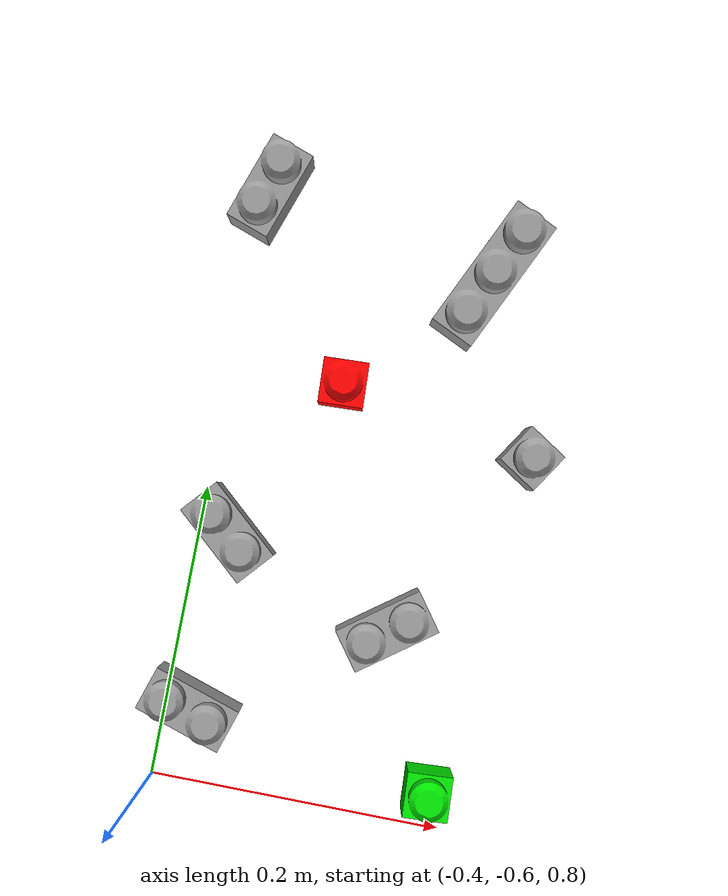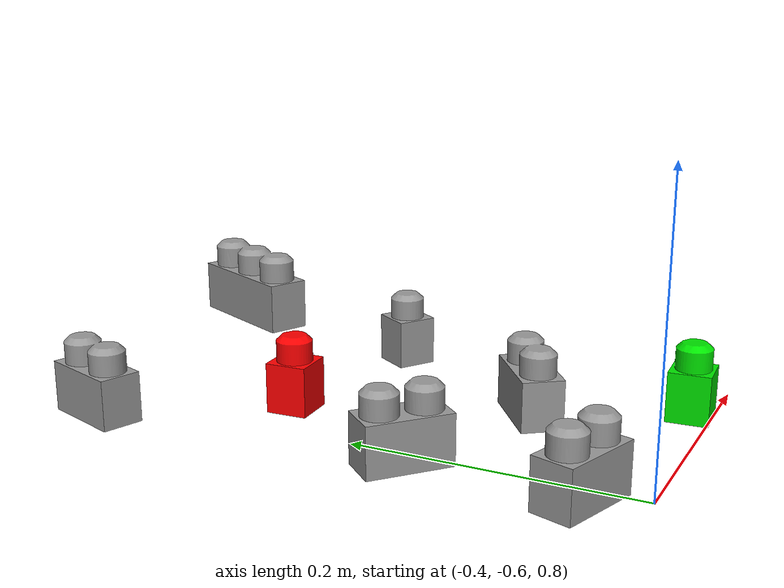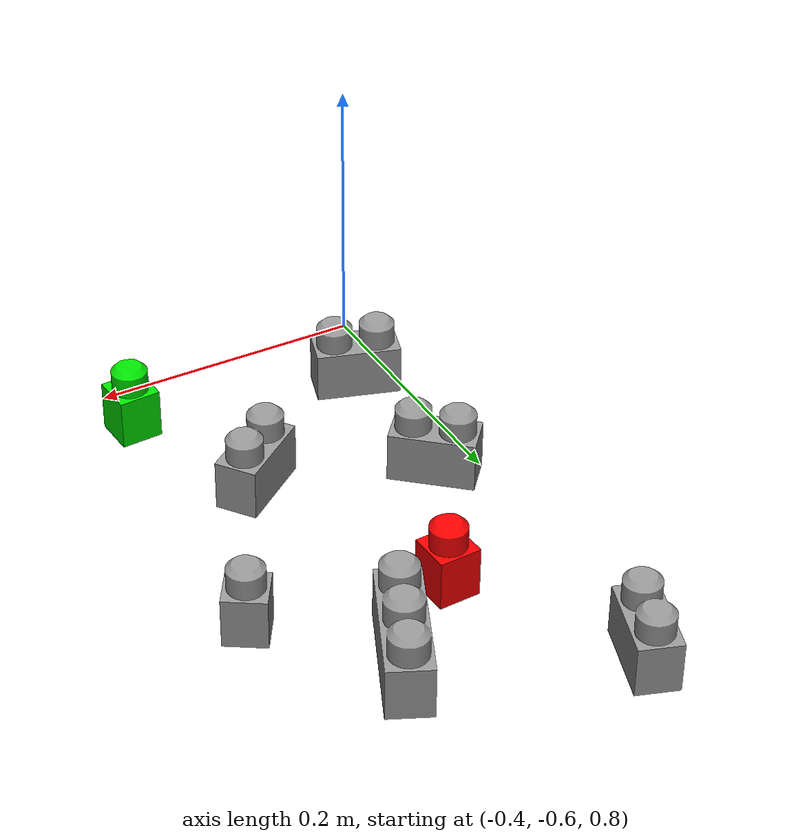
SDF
<sdf version="1.7">
 <world name="base">
  <plugin name="ros_link_attacher_plugin" filename="libgazebo_ros_link_attacher.so"/>
  <gravity>0 0 -9.81</gravity>
  <physics name="default_physics" default="0" type="ode">
   <max_step_size>0.001</max_step_size>
   <real_time_factor>1</real_time_factor>
   <real_time_update_rate>1000</real_time_update_rate>
  </physics>
  <scene><ambient>0.4 0.4 0.4 1</ambient><background>0.7 0.7 0.7 1</background><shadows>1</shadows></scene>
  <light name="sun" type="directional">
   <cast_shadows>0</cast_shadows>
   <pose>0 0 10 0 -0 0</pose>
   <diffuse>0.8 0.8 0.8 1</diffuse>
   <specular>0.2 0.2 0.2 1</specular>
   <attenuation>
    <range>1000</range>
    <constant>0.9</constant>
    <linear>0.01</linear>
    <quadratic>0.001</quadratic>
   </attenuation>
   <direction>-0.5 0.1 -0.9</direction>
   <spot><inner_angle>0</inner_angle><outer_angle>0</outer_angle><falloff>0</falloff></spot>
  </light>
  <model name="ground_plane">
   <static>1</static>
   <link name="link">
    <collision name="collision">
     <geometry><plane><normal>0 0 1</normal><size>100 100</size></plane></geometry>
     <surface>
      <contact><collide_bitmask>65535</collide_bitmask></contact>
      <friction><ode><mu>100</mu><mu2>50</mu2></ode></friction>
     </surface>
    </collision>
    <visual name="visual">
     <cast_shadows>0</cast_shadows>
     <geometry><plane><normal>0 0 1</normal><size>100 100</size></plane></geometry>
     <material>
      <script><uri>file://media/materials/scripts/gazebo.material</uri><name>Gazebo/Grey</name></script>
     </material>
    </visual>
   </link>
  </model>
  <model name="lego_X1-Y2-Z2">
   <link name="link">
    <inertial>
     <pose>1e-06 7e-06 0.000398 0 -0 0</pose>
     <mass>0.146868</mass>
     <inertia>
      <ixx>0.000100644</ixx>
      <ixy>-2.20574e-09</ixy>
      <ixz>6.78532e-10</ixz>
      <iyy>5.89081e-05</iyy>
      <iyz>-2.30188e-08</iyz>
      <izz>7.98702e-05</izz>
     </inertia>
    </inertial>
    <collision name="collision">
     <geometry><mesh><scale>1 1 1</scale><uri>model://lego_X1-Y2-Z2/meshes/X1-Y2-Z2.stl</uri></mesh></geometry>
     <surface>
      <contact><ode><max_vel>0.01</max_vel><min_depth>0</min_depth><mu>0.1</mu><mu2>0.1</mu2></ode></contact>
      <bounce><restitution_coefficient>0</restitution_coefficient><threshold>1e+06</threshold></bounce>
     </surface>
    </collision>
    <visual name="visual">
     <geometry><mesh><scale>1 1 1</scale><uri>model://lego_X1-Y2-Z2/meshes/X1-Y2-Z2.stl</uri></mesh></geometry>
     <material>
      <script><uri>file://media/materials/scripts/gazebo.material</uri><name>Gazebo/Grey</name></script>
      <shader type="vertex"><normal_map>__default__</normal_map></shader>
      <ambient>0.3 0.3 0.3 1</ambient>
      <diffuse>0.7 0.7 0.7 1</diffuse>
      <specular>0.01 0.01 0.01 1</specular>
      <emissive>0 0 0 1</emissive>
     </material>
    </visual>
   </link>
   <pose>-0.396859 -0.190731 0.810899 -2.3e-05 0.000215 -0.332383</pose>
  </model>
  <model name="lego_X1-Y2-Z2_0">
   <link name="link">
    <inertial>
     <pose>1e-06 7e-06 0.000398 0 -0 0</pose>
     <mass>0.146868</mass>
     <inertia>
      <ixx>0.000100644</ixx>
      <ixy>-2.20574e-09</ixy>
      <ixz>6.78532e-10</ixz>
      <iyy>5.89081e-05</iyy>
      <iyz>-2.30188e-08</iyz>
      <izz>7.98702e-05</izz>
     </inertia>
    </inertial>
    <collision name="collision">
     <geometry><mesh><scale>1 1 1</scale><uri>model://lego_X1-Y2-Z2/meshes/X1-Y2-Z2.stl</uri></mesh></geometry>
     <surface>
      <contact><ode><max_vel>0.01</max_vel><min_depth>0</min_depth><mu>0.1</mu><mu2>0.1</mu2></ode></contact>
      <bounce><restitution_coefficient>0</restitution_coefficient><threshold>1e+06</threshold></bounce>
     </surface>
    </collision>
    <visual name="visual">
     <geometry><mesh><scale>1 1 1</scale><uri>model://lego_X1-Y2-Z2/meshes/X1-Y2-Z2.stl</uri></mesh></geometry>
     <material>
      <script><uri>file://media/materials/scripts/gazebo.material</uri><name>Gazebo/Grey</name></script>
      <shader type="vertex"><normal_map>__default__</normal_map></shader>
      <ambient>0.3 0.3 0.3 1</ambient>
      <diffuse>0.7 0.7 0.7 1</diffuse>
      <specular>0.01 0.01 0.01 1</specular>
      <emissive>0 0 0 1</emissive>
     </material>
    </visual>
   </link>
   <pose>-0.379729 -0.42711 0.810908 0 -0 0.851339</pose>
  </model>
  <model name="lego_X1-Y2-Z2_1">
   <link name="link">
    <inertial>
     <pose>1e-06 7e-06 0.000398 0 -0 0</pose>
     <mass>0.146868</mass>
     <inertia>
      <ixx>0.000100644</ixx>
      <ixy>-2.20574e-09</ixy>
      <ixz>6.78532e-10</ixz>
      <iyy>5.89081e-05</iyy>
      <iyz>-2.30188e-08</iyz>
      <izz>7.98702e-05</izz>
     </inertia>
    </inertial>
    <collision name="collision">
     <geometry><mesh><scale>1 1 1</scale><uri>model://lego_X1-Y2-Z2/meshes/X1-Y2-Z2.stl</uri></mesh></geometry>
     <surface>
      <contact><ode><max_vel>0.01</max_vel><min_depth>0</min_depth><mu>0.1</mu><mu2>0.1</mu2></ode></contact>
      <bounce><restitution_coefficient>0</restitution_coefficient><threshold>1e+06</threshold></bounce>
     </surface>
    </collision>
    <visual name="visual">
     <geometry><mesh><scale>1 1 1</scale><uri>model://lego_X1-Y2-Z2/meshes/X1-Y2-Z2.stl</uri></mesh></geometry>
     <material>
      <script><uri>file://media/materials/scripts/gazebo.material</uri><name>Gazebo/Grey</name></script>
      <shader type="vertex"><normal_map>__default__</normal_map></shader>
      <ambient>0.3 0.3 0.3 1</ambient>
      <diffuse>0.7 0.7 0.7 1</diffuse>
      <specular>0.01 0.01 0.01 1</specular>
      <emissive>0 0 0 1</emissive>
     </material>
    </visual>
   </link>
   <pose>-0.382858 -0.550142 0.810921 -0.000138 -0.000586 1.26204</pose>
  </model>
  <model name="lego_X1-Y2-Z2_2">
   <link name="link">
    <inertial>
     <pose>1e-06 7e-06 0.000398 0 -0 0</pose>
     <mass>0.146868</mass>
     <inertia>
      <ixx>0.000100644</ixx>
      <ixy>-2.20574e-09</ixy>
      <ixz>6.78532e-10</ixz>
      <iyy>5.89081e-05</iyy>
      <iyz>-2.30188e-08</iyz>
      <izz>7.98702e-05</izz>
     </inertia>
    </inertial>
    <collision name="collision">
     <geometry><mesh><scale>1 1 1</scale><uri>model://lego_X1-Y2-Z2/meshes/X1-Y2-Z2.stl</uri></mesh></geometry>
     <surface>
      <contact><ode><max_vel>0.01</max_vel><min_depth>0</min_depth><mu>0.1</mu><mu2>0.1</mu2></ode></contact>
      <bounce><restitution_coefficient>0</restitution_coefficient><threshold>1e+06</threshold></bounce>
     </surface>
    </collision>
    <visual name="visual">
     <geometry><mesh><scale>1 1 1</scale><uri>model://lego_X1-Y2-Z2/meshes/X1-Y2-Z2.stl</uri></mesh></geometry>
     <material>
      <script><uri>file://media/materials/scripts/gazebo.material</uri><name>Gazebo/Grey</name></script>
      <shader type="vertex"><normal_map>__default__</normal_map></shader>
      <ambient>0.3 0.3 0.3 1</ambient>
      <diffuse>0.7 0.7 0.7 1</diffuse>
      <specular>0.01 0.01 0.01 1</specular>
      <emissive>0 0 0 1</emissive>
     </material>
    </visual>
   </link>
   <pose>-0.26026 -0.471879 0.810906 -1.5e-05 -0.000207 -0.933508</pose>
  </model>
  <model name="lego_X1-Y3-Z2">
   <link name="link">
    <inertial>
     <pose>1e-06 1e-06 0.000653 0 -0 0</pose>
     <mass>0.212844</mass>
     <inertia>
      <ixx>0.000243994</ixx>
      <ixy>-2.47623e-10</ixy>
      <ixz>-4.81047e-09</ixz>
      <iyy>8.5861e-05</iyy>
      <iyz>-7.44265e-09</iyz>
      <izz>0.000214469</izz>
     </inertia>
    </inertial>
    <collision name="collision">
     <geometry><mesh><scale>1 1 1</scale><uri>model://lego_X1-Y3-Z2/meshes/X1-Y3-Z2.stl</uri></mesh></geometry>
     <surface>
      <contact><ode><max_vel>0.01</max_vel><min_depth>0</min_depth><mu>0.1</mu><mu2>0.1</mu2></ode></contact>
      <bounce><restitution_coefficient>0</restitution_coefficient><threshold>1e+06</threshold></bounce>
     </surface>
    </collision>
    <visual name="visual">
     <geometry><mesh><scale>1 1 1</scale><uri>model://lego_X1-Y3-Z2/meshes/X1-Y3-Z2.stl</uri></mesh></geometry>
     <material>
      <script><uri>file://media/materials/scripts/gazebo.material</uri><name>Gazebo/Grey</name></script>
      <shader type="vertex"><normal_map>__default__</normal_map></shader>
      <ambient>0.3 0.3 0.3 1</ambient>
      <diffuse>0.7 0.7 0.7 1</diffuse>
      <specular>0.01 0.01 0.01 1</specular>
      <emissive>0 0 0 1</emissive>
     </material>
    </visual>
   </link>
   <pose>-0.238806 -0.225905 0.847802 0.000108 -0.00021 -0.432463</pose>
  </model>
  <model name="lego_X1-Y1-Z2">
   <link name="link">
    <inertial>
     <pose>2e-06 -0 -0.000475 0 -0 0</pose>
     <mass>0.0802771</mass>
     <inertia>
      <ixx>3.14179e-05</ixx>
      <ixy>-2.69251e-09</ixy>
      <ixz>-4.52438e-09</ixz>
      <iyy>3.14364e-05</iyy>
      <iyz>3.14783e-09</iyz>
      <izz>1.98462e-05</izz>
     </inertia>
    </inertial>
    <collision name="collision">
     <geometry><mesh><scale>1 1 1</scale><uri>model://lego_X1-Y1-Z2/meshes/X1-Y1-Z2.stl</uri></mesh></geometry>
     <surface>
      <contact><ode><max_vel>0.01</max_vel><min_depth>0</min_depth><mu>0.1</mu><mu2>0.1</mu2></ode></contact>
      <bounce><restitution_coefficient>0</restitution_coefficient><threshold>1e+06</threshold></bounce>
     </surface>
    </collision>
    <visual name="visual">
     <geometry><mesh><scale>1 1 1</scale><uri>model://lego_X1-Y1-Z2/meshes/X1-Y1-Z2.stl</uri></mesh></geometry>
     <material>
      <script><uri>file://media/materials/scripts/gazebo.material</uri><name>Gazebo/Grey</name></script>
      <shader type="vertex"><normal_map>__default__</normal_map></shader>
      <ambient>0 0.9 0 1</ambient>
      <diffuse>0.7 0.7 0.7 1</diffuse>
      <specular>0.01 0.01 0.01 1</specular>
      <emissive>0 0 0 1</emissive>
     </material>
    </visual>
   </link>
   <pose>-0.211675 -0.576668 0.810907 4e-05 0 0.056845</pose>
  </model>
  <model name="lego_X1-Y1-Z2_0">
   <link name="link">
    <inertial>
     <pose>2e-06 -0 -0.000475 0 -0 0</pose>
     <mass>0.0802771</mass>
     <inertia>
      <ixx>3.14179e-05</ixx>
      <ixy>-2.69251e-09</ixy>
      <ixz>-4.52438e-09</ixz>
      <iyy>3.14364e-05</iyy>
      <iyz>3.14783e-09</iyz>
      <izz>1.98462e-05</izz>
     </inertia>
    </inertial>
    <collision name="collision">
     <geometry><mesh><scale>1 1 1</scale><uri>model://lego_X1-Y1-Z2/meshes/X1-Y1-Z2.stl</uri></mesh></geometry>
     <surface>
      <contact><ode><max_vel>0.01</max_vel><min_depth>0</min_depth><mu>0.1</mu><mu2>0.1</mu2></ode></contact>
      <bounce><restitution_coefficient>0</restitution_coefficient><threshold>1e+06</threshold></bounce>
     </surface>
    </collision>
    <visual name="visual">
     <geometry><mesh><scale>1 1 1</scale><uri>model://lego_X1-Y1-Z2/meshes/X1-Y1-Z2.stl</uri></mesh></geometry>
     <material>
      <script><uri>file://media/materials/scripts/gazebo.material</uri><name>Gazebo/Grey</name></script>
      <shader type="vertex"><normal_map>__default__</normal_map></shader>
      <ambient>1 1 1 1</ambient>
      <diffuse>0.7 0.7 0.7 1</diffuse>
      <specular>0.01 0.01 0.01 1</specular>
      <emissive>0 0 0 1</emissive>
     </material>
    </visual>
   </link>
   <pose>-0.186503 -0.337505 0.810909 6.1e-05 1.3e-05 1.00461</pose>
  </model>
  <model name="lego_X1-Y1-Z2_1">
   <link name="link">
    <inertial>
     <pose>2e-06 -0 -0.000475 0 -0 0</pose>
     <mass>0.0802771</mass>
     <inertia>
      <ixx>3.14179e-05</ixx>
      <ixy>-2.69251e-09</ixy>
      <ixz>-4.52438e-09</ixz>
      <iyy>3.14364e-05</iyy>
      <iyz>3.14783e-09</iyz>
      <izz>1.98462e-05</izz>
     </inertia>
    </inertial>
    <collision name="collision">
     <geometry><mesh><scale>1 1 1</scale><uri>model://lego_X1-Y1-Z2/meshes/X1-Y1-Z2.stl</uri></mesh></geometry>
     <surface>
      <contact><ode><max_vel>0.01</max_vel><min_depth>0</min_depth><mu>0.1</mu><mu2>0.1</mu2></ode></contact>
      <bounce><restitution_coefficient>0</restitution_coefficient><threshold>1e+06</threshold></bounce>
     </surface>
    </collision>
    <visual name="visual">
     <geometry><mesh><scale>1 1 1</scale><uri>model://lego_X1-Y1-Z2/meshes/X1-Y1-Z2.stl</uri></mesh></geometry>
     <material>
      <script><uri>file://media/materials/scripts/gazebo.material</uri><name>Gazebo/Grey</name></script>
      <shader type="vertex"><normal_map>__default__</normal_map></shader>
      <ambient>1 0 0 1</ambient>
      <diffuse>0.7 0.7 0.7 1</diffuse>
      <specular>0.01 0.01 0.01 1</specular>
      <emissive>0 0 0 1</emissive>
     </material>
    </visual>
   </link>
   <pose>-0.322096 -0.312012 0.810909 0 3.5e-05 0.045523</pose>
  </model>
 </world>
</sdf>
